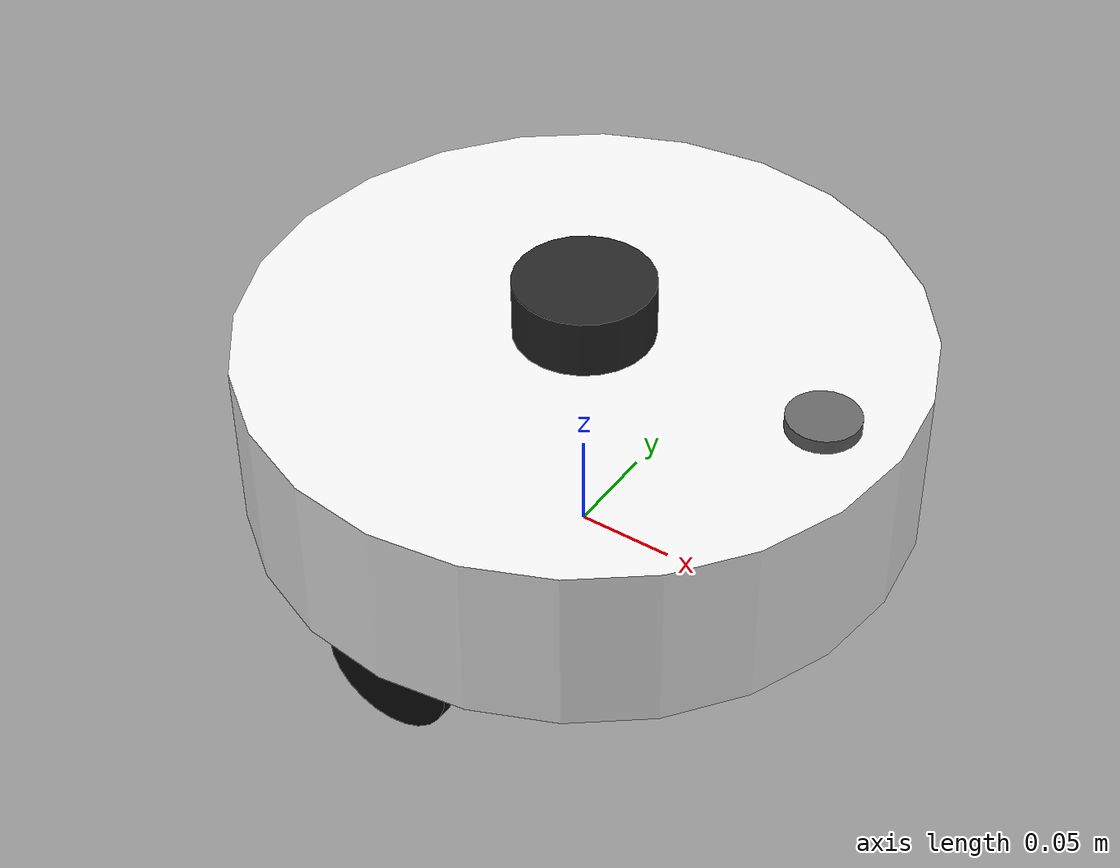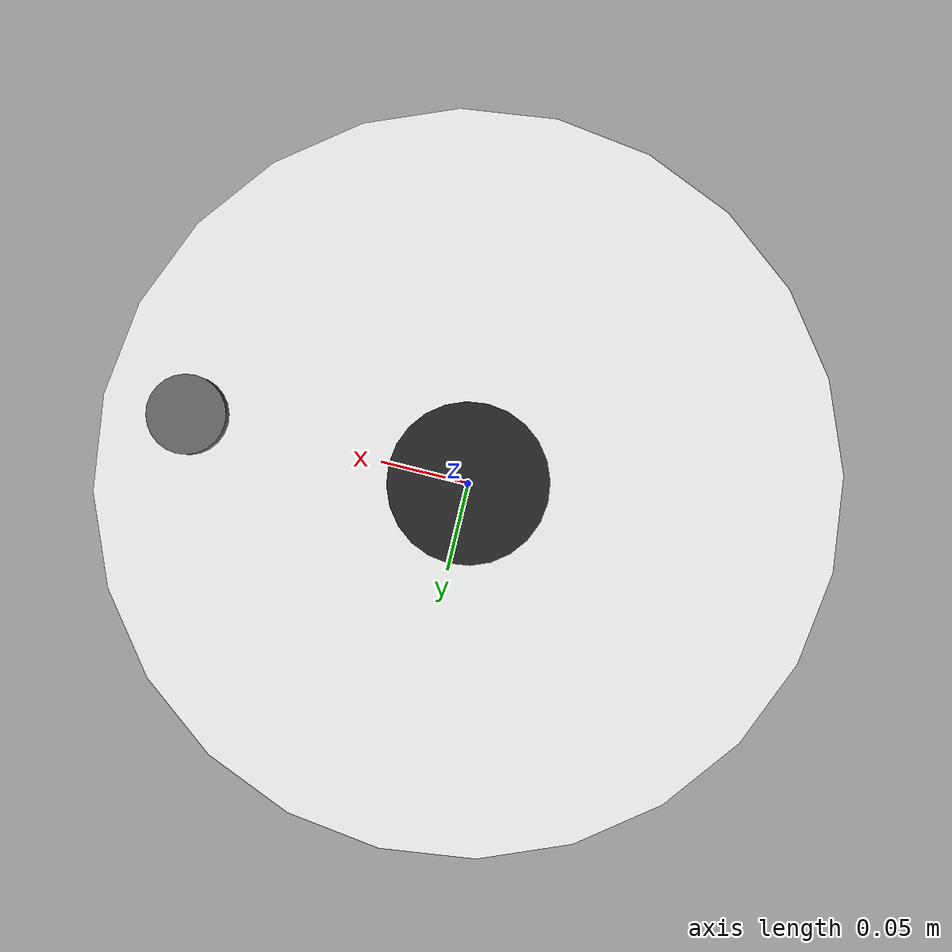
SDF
<?xml version="1.0" ?>
<sdf version="1.10">
  <model name="vacuum_cleaner">

    <link name="base_link">
      <pose>0 0 0.078 0 0 0</pose>

      <inertial>
        <pose>0.05 0 0 0 0 0</pose>
        <mass>2.0</mass>
        <inertia>
          <ixx>0.0159</ixx>
          <iyy>0.0159</iyy>
          <izz>0.0289</izz>
          <ixy>0</ixy><ixz>0</ixz><iyz>0</iyz>
        </inertia>
      </inertial>

      <collision name="body_collision">
        <geometry>
          <cylinder>
            <radius>0.17</radius>
            <length>0.09</length>
          </cylinder>
        </geometry>
      </collision>

      <visual name="body_visual">
        <geometry>
          <cylinder>
            <radius>0.17</radius>
            <length>0.09</length>
          </cylinder>
        </geometry>
        <material>
          <ambient>0.95 0.95 0.95 1</ambient>
          <diffuse>0.95 0.95 0.95 1</diffuse>
          <specular>0.2 0.2 0.2 1</specular>
        </material>
      </visual>

      <!-- Decorative top button (the orange ring detail from the photo) -->
      <visual name="top_button_visual">
        <pose>0 0 0.048 0 0 0</pose>
        <geometry>
          <cylinder>
            <radius>0.03</radius>
            <length>0.006</length>
          </cylinder>
        </geometry>
        <material>
          <ambient>0.9 0.45 0.05 1</ambient>
          <diffuse>0.9 0.45 0.05 1</diffuse>
        </material>
      </visual>

      <!-- Front-direction marker (visible from above) -->
      <visual name="front_marker_visual">
        <pose>0.13 0 0.048 0 0 0</pose>
        <geometry>
          <cylinder>
            <radius>0.018</radius>
            <length>0.008</length>
          </cylinder>
        </geometry>
        <material>
          <ambient>0.4 0.4 0.4 1</ambient>
          <diffuse>0.4 0.4 0.4 1</diffuse>
        </material>
      </visual>
    </link>

    <!-- ===================== Lidar ===================== -->
    <link name="lidar_link">
      <!-- Mounted on top of the body: body_top = 0.078 + 0.045 = 0.123,
           lidar housing half-height = 0.015 -> z = 0.138 -->
      <pose>0 0 0.138 0 0 0</pose>

      <inertial>
        <mass>0.1</mass>
        <inertia>
          <ixx>3.7e-5</ixx>
          <iyy>3.7e-5</iyy>
          <izz>6.1e-5</izz>
          <ixy>0</ixy><ixz>0</ixz><iyz>0</iyz>
        </inertia>
      </inertial>

      <visual name="lidar_visual">
        <geometry>
          <cylinder>
            <radius>0.035</radius>
            <length>0.030</length>
          </cylinder>
        </geometry>
        <material>
          <ambient>0.15 0.15 0.15 1</ambient>
          <diffuse>0.15 0.15 0.15 1</diffuse>
        </material>
      </visual>

      <collision name="lidar_collision">
        <geometry>
          <cylinder>
            <radius>0.035</radius>
            <length>0.030</length>
          </cylinder>
        </geometry>
      </collision>

      <sensor name="lidar" type="gpu_lidar">
        <pose>0 0 0.02 0 0 0</pose>
        <update_rate>10</update_rate>
        <topic>scan</topic>
        <gz_frame_id>lidar_link</gz_frame_id>
        <always_on>true</always_on>
        <visualize>true</visualize>
        <lidar>
          <scan>
            <horizontal>
              <samples>360</samples>
              <resolution>1</resolution>
              <min_angle>-3.14159</min_angle>
              <max_angle>3.14159</max_angle>
            </horizontal>
            <vertical>
              <samples>1</samples>
              <resolution>1</resolution>
              <min_angle>0</min_angle>
              <max_angle>0</max_angle>
            </vertical>
          </scan>
          <range>
            <min>0.12</min>
            <max>8.0</max>
            <resolution>0.01</resolution>
          </range>
          <noise>
            <type>gaussian</type>
            <mean>0.0</mean>
            <stddev>0.01</stddev>
          </noise>
        </lidar>
      </sensor>
    </link>

    <joint name="lidar_joint" type="fixed">
      <parent>base_link</parent>
      <child>lidar_link</child>
    </joint>

    <!-- ===================== Left drive wheel ===================== -->
    <link name="left_wheel_link">
      <!-- Wheel axis along y. Rotate cylinder so its length runs along y. -->
      <pose>0 0.155 0.033 1.5708 0 0</pose>

      <inertial>
        <mass>0.15</mass>
        <inertia>
          <ixx>4.6e-5</ixx>
          <iyy>4.6e-5</iyy>
          <izz>8.2e-5</izz>
          <ixy>0</ixy><ixz>0</ixz><iyz>0</iyz>
        </inertia>
      </inertial>

      <visual name="left_wheel_visual">
        <geometry>
          <cylinder>
            <radius>0.033</radius>
            <length>0.018</length>
          </cylinder>
        </geometry>
        <material>
          <ambient>0.05 0.05 0.05 1</ambient>
          <diffuse>0.05 0.05 0.05 1</diffuse>
        </material>
      </visual>

      <collision name="left_wheel_collision">
        <geometry>
          <cylinder>
            <radius>0.033</radius>
            <length>0.018</length>
          </cylinder>
        </geometry>
        <surface>
          <friction>
            <ode>
              <mu>1.0</mu>
              <mu2>1.0</mu2>
            </ode>
          </friction>
        </surface>
      </collision>
    </link>

    <joint name="left_wheel_joint" type="revolute">
      <parent>base_link</parent>
      <child>left_wheel_link</child>
      <axis>
        <xyz expressed_in="__model__">0 1 0</xyz>
        <dynamics>
          <damping>0.001</damping>
        </dynamics>
      </axis>
    </joint>

    <!-- ===================== Right drive wheel ===================== -->
    <link name="right_wheel_link">
      <pose>0 -0.155 0.033 1.5708 0 0</pose>

      <inertial>
        <mass>0.15</mass>
        <inertia>
          <ixx>4.6e-5</ixx>
          <iyy>4.6e-5</iyy>
          <izz>8.2e-5</izz>
          <ixy>0</ixy><ixz>0</ixz><iyz>0</iyz>
        </inertia>
      </inertial>

      <visual name="right_wheel_visual">
        <geometry>
          <cylinder>
            <radius>0.033</radius>
            <length>0.018</length>
          </cylinder>
        </geometry>
        <material>
          <ambient>0.05 0.05 0.05 1</ambient>
          <diffuse>0.05 0.05 0.05 1</diffuse>
        </material>
      </visual>

      <collision name="right_wheel_collision">
        <geometry>
          <cylinder>
            <radius>0.033</radius>
            <length>0.018</length>
          </cylinder>
        </geometry>
        <surface>
          <friction>
            <ode>
              <mu>1.0</mu>
              <mu2>1.0</mu2>
            </ode>
          </friction>
        </surface>
      </collision>
    </link>

    <joint name="right_wheel_joint" type="revolute">
      <parent>base_link</parent>
      <child>right_wheel_link</child>
      <axis>
        <xyz expressed_in="__model__">0 1 0</xyz>
        <dynamics>
          <damping>0.001</damping>
        </dynamics>
      </axis>
    </joint>

    <!-- ===================== Caster wheel (front, passive sphere) ===================== -->
    <link name="caster_link">
      <pose>0.12 0 0.015 0 0 0</pose>

      <inertial>
        <mass>0.02</mass>
        <inertia>
          <ixx>1.8e-6</ixx>
          <iyy>1.8e-6</iyy>
          <izz>1.8e-6</izz>
          <ixy>0</ixy><ixz>0</ixz><iyz>0</iyz>
        </inertia>
      </inertial>

      <visual name="caster_visual">
        <geometry>
          <sphere>
            <radius>0.015</radius>
          </sphere>
        </geometry>
        <material>
          <ambient>0.2 0.2 0.2 1</ambient>
          <diffuse>0.2 0.2 0.2 1</diffuse>
        </material>
      </visual>

      <collision name="caster_collision">
        <geometry>
          <sphere>
            <radius>0.015</radius>
          </sphere>
        </geometry>
        <surface>
          <friction>
            <ode>
              <mu>0.0</mu>
              <mu2>0.0</mu2>
            </ode>
          </friction>
        </surface>
      </collision>
    </link>

    <joint name="caster_joint" type="ball">
      <parent>base_link</parent>
      <child>caster_link</child>
    </joint>

    <!-- ===================== Plugins ===================== -->
    <plugin filename="gz-sim-diff-drive-system"
            name="gz::sim::systems::DiffDrive">
      <left_joint>left_wheel_joint</left_joint>
      <right_joint>right_wheel_joint</right_joint>
      <wheel_separation>0.31</wheel_separation>
      <wheel_radius>0.033</wheel_radius>
      <odom_publish_frequency>30</odom_publish_frequency>
      <topic>cmd_vel</topic>
      <odom_topic>odom</odom_topic>
      <tf_topic>tf</tf_topic>
      <frame_id>odom</frame_id>
      <child_frame_id>base_link</child_frame_id>
      <max_linear_acceleration>1.0</max_linear_acceleration>
      <max_angular_acceleration>2.0</max_angular_acceleration>
    </plugin>

    <plugin filename="gz-sim-joint-state-publisher-system"
            name="gz::sim::systems::JointStatePublisher">
      <topic>joint_states</topic>
      <joint_name>left_wheel_joint</joint_name>
      <joint_name>right_wheel_joint</joint_name>
    </plugin>

    <plugin filename="gz-sim-pose-publisher-system"
            name="gz::sim::systems::PosePublisher">
      <publish_link_pose>false</publish_link_pose>
      <publish_model_pose>true</publish_model_pose>
      <use_pose_vector_msg>true</use_pose_vector_msg>
      <update_frequency>30</update_frequency>
    </plugin>

  </model>
</sdf>
